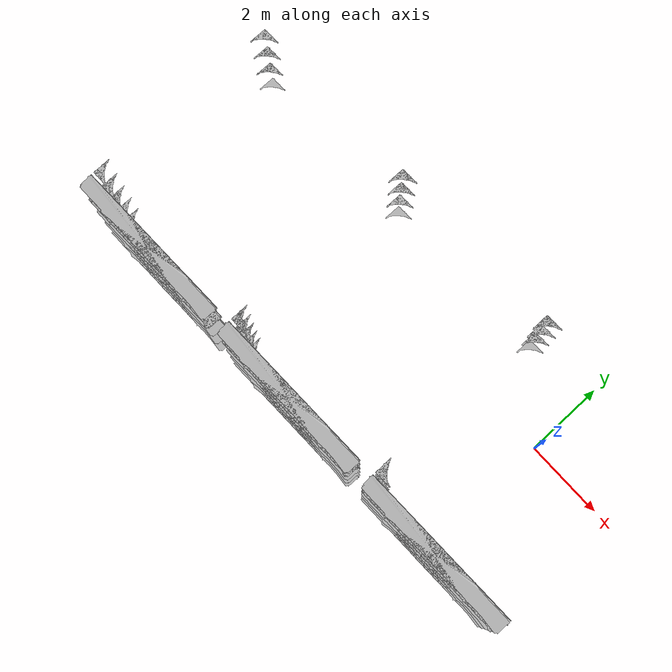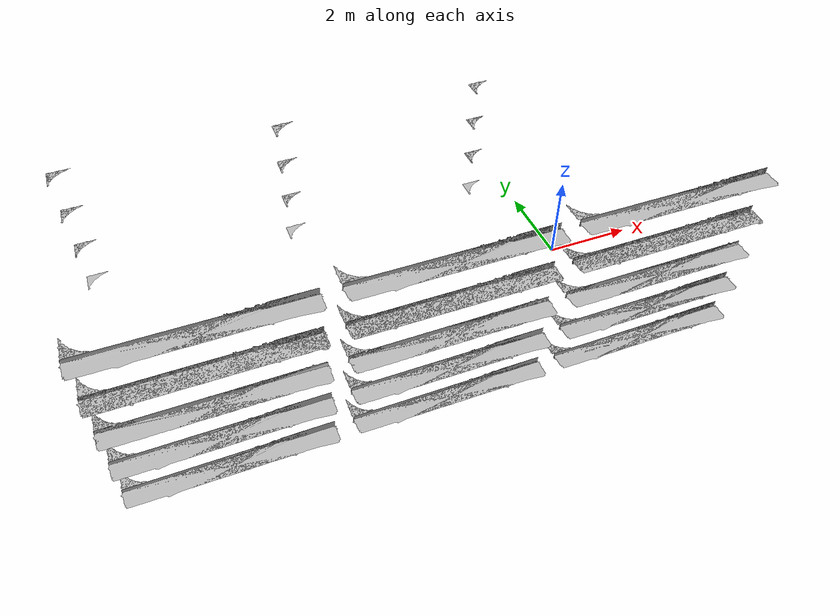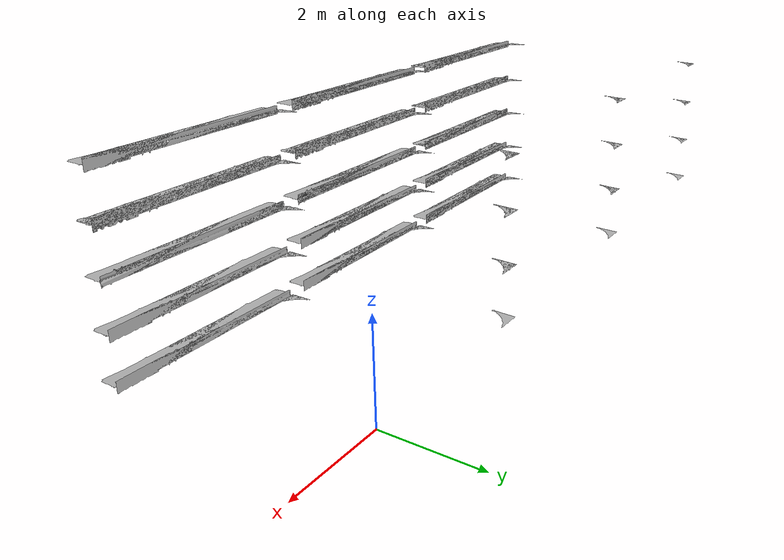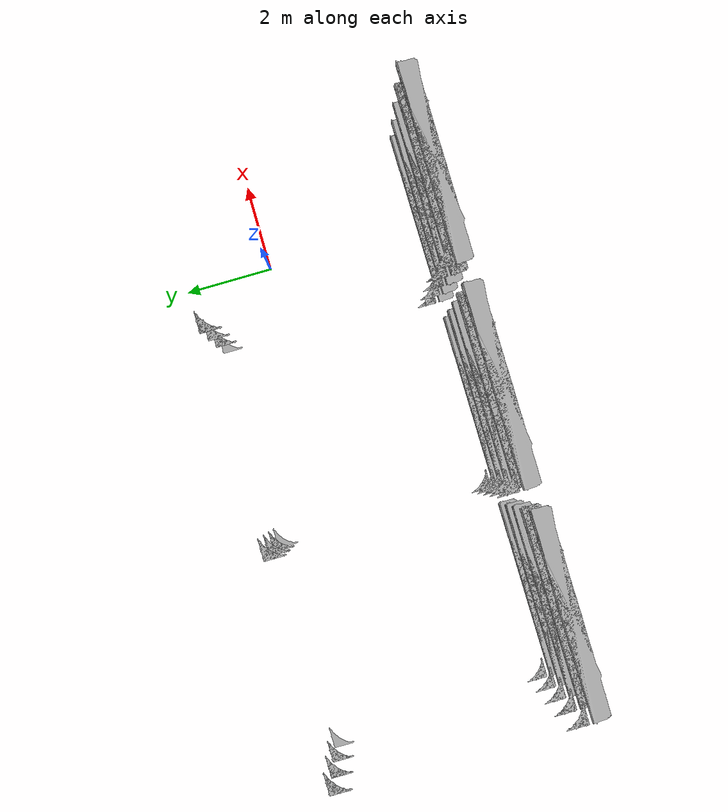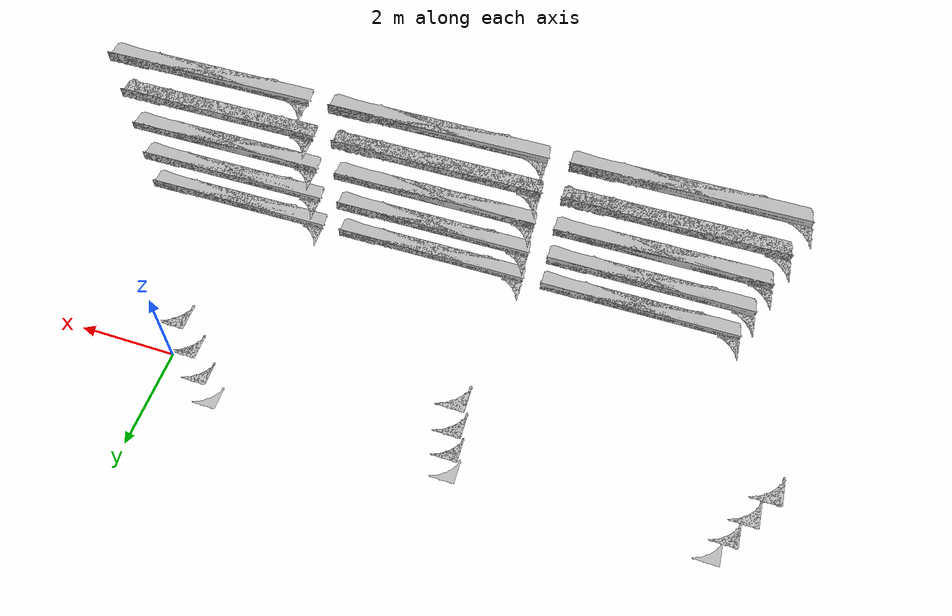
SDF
<sdf version="1.4">
 <world name="default">
  <include><uri>model://sun</uri></include>
  <plugin name="ros_interface_plugin" filename="librotors_gazebo_ros_interface_plugin.so"/>
  <spherical_coordinates>
   <surface_model>EARTH_WGS84</surface_model>
   <latitude_deg>47.3667</latitude_deg>
   <longitude_deg>8.5500</longitude_deg>
   <elevation>500.0</elevation>
   <heading_deg>0</heading_deg>
  </spherical_coordinates>
  <physics type="ode">
   <ode>
    <solver><type>quick</type><iters>1000</iters><sor>1.3</sor></solver>
    <constraints>
     <cfm>0</cfm>
     <erp>0.2</erp>
     <contact_max_correcting_vel>100</contact_max_correcting_vel>
     <contact_surface_layer>0.001</contact_surface_layer>
    </constraints>
   </ode>
   <max_step_size>0.01</max_step_size>
   <real_time_factor>1</real_time_factor>
   <real_time_update_rate>100</real_time_update_rate>
   <gravity>0 0 -9.8</gravity>
  </physics>
  <model name="sem_0">
   <pose>0.05 -0.2 0 0 0 0</pose>
   <static>true</static>
   <plugin filename="ignition-gazebo-label-system" name="ignition::gazebo::systems::Label">
    <label>3</label>
   </plugin>
   <link name="body">
    <visual name="visual">
     <geometry><mesh><uri>meshes/ballast_tank/wall1/bts/bt1.stl</uri></mesh></geometry>
    </visual>
    <visual name="visual_inv">
     <geometry><mesh><uri>meshes/ballast_tank/wall1/bts/bt1_inv.stl</uri></mesh></geometry>
    </visual>
   </link>
   <link name="body_col">
    <pose>0.05 0 0 0 0 0</pose>
    <collision name="collision"><geometry><box><size>0.05 0.05 0.05</size></box></geometry></collision>
   </link>
  </model>
  <model name="sem_1">
   <pose>0.05 -0.2 0 0 0 0</pose>
   <static>true</static>
   <plugin filename="ignition-gazebo-label-system" name="ignition::gazebo::systems::Label">
    <label>3</label>
   </plugin>
   <link name="body">
    <visual name="visual">
     <geometry><mesh><uri>meshes/ballast_tank/wall1/bts/bt2.stl</uri></mesh></geometry>
    </visual>
    <visual name="visual_inv">
     <geometry><mesh><uri>meshes/ballast_tank/wall1/bts/bt2_inv.stl</uri></mesh></geometry>
    </visual>
   </link>
   <link name="body_col">
    <pose>0.1 0 0 0 0 0</pose>
    <collision name="collision"><geometry><box><size>0.05 0.05 0.05</size></box></geometry></collision>
   </link>
  </model>
  <model name="sem_2">
   <pose>0.05 -0.2 0 0 0 0</pose>
   <static>true</static>
   <plugin filename="ignition-gazebo-label-system" name="ignition::gazebo::systems::Label">
    <label>3</label>
   </plugin>
   <link name="body">
    <visual name="visual">
     <geometry><mesh><uri>meshes/ballast_tank/wall1/bts/bt3.stl</uri></mesh></geometry>
    </visual>
    <visual name="visual_inv">
     <geometry><mesh><uri>meshes/ballast_tank/wall1/bts/bt3_inv.stl</uri></mesh></geometry>
    </visual>
   </link>
   <link name="body_col">
    <pose>0.15000000000000002 0 0 0 0 0</pose>
    <collision name="collision"><geometry><box><size>0.05 0.05 0.05</size></box></geometry></collision>
   </link>
  </model>
  <model name="sem_3">
   <pose>0.05 -0.2 0 0 0 0</pose>
   <static>true</static>
   <plugin filename="ignition-gazebo-label-system" name="ignition::gazebo::systems::Label">
    <label>3</label>
   </plugin>
   <link name="body">
    <visual name="visual">
     <geometry><mesh><uri>meshes/ballast_tank/wall1/bts/bt4.stl</uri></mesh></geometry>
    </visual>
    <visual name="visual_inv">
     <geometry><mesh><uri>meshes/ballast_tank/wall1/bts/bt4_inv.stl</uri></mesh></geometry>
    </visual>
   </link>
   <link name="body_col">
    <pose>0.2 0 0 0 0 0</pose>
    <collision name="collision"><geometry><box><size>0.05 0.05 0.05</size></box></geometry></collision>
   </link>
  </model>
  <model name="sem_4">
   <pose>0.05 -0.2 0 0 0 0</pose>
   <static>true</static>
   <plugin filename="ignition-gazebo-label-system" name="ignition::gazebo::systems::Label">
    <label>3</label>
   </plugin>
   <link name="body">
    <visual name="visual">
     <geometry><mesh><uri>meshes/ballast_tank/wall1/bts/bt5.stl</uri></mesh></geometry>
    </visual>
    <visual name="visual_inv">
     <geometry><mesh><uri>meshes/ballast_tank/wall1/bts/bt5_inv.stl</uri></mesh></geometry>
    </visual>
   </link>
   <link name="body_col">
    <pose>0.25 0 0 0 0 0</pose>
    <collision name="collision"><geometry><box><size>0.05 0.05 0.05</size></box></geometry></collision>
   </link>
  </model>
  <model name="sem_5">
   <pose>0.05 -0.2 0 0 0 0</pose>
   <static>true</static>
   <plugin filename="ignition-gazebo-label-system" name="ignition::gazebo::systems::Label">
    <label>4</label>
   </plugin>
   <link name="body">
    <visual name="visual">
     <geometry><mesh><uri>meshes/ballast_tank/wall1/longs/long1.stl</uri></mesh></geometry>
    </visual>
    <visual name="visual_inv">
     <geometry><mesh><uri>meshes/ballast_tank/wall1/longs/long1_inv.stl</uri></mesh></geometry>
    </visual>
   </link>
   <link name="body_col">
    <pose>0.30000000000000004 0 0 0 0 0</pose>
    <collision name="collision"><geometry><box><size>0.05 0.05 0.05</size></box></geometry></collision>
   </link>
  </model>
  <model name="sem_6">
   <pose>0.05 -0.2 0 0 0 0</pose>
   <static>true</static>
   <plugin filename="ignition-gazebo-label-system" name="ignition::gazebo::systems::Label">
    <label>4</label>
   </plugin>
   <link name="body">
    <visual name="visual">
     <geometry><mesh><uri>meshes/ballast_tank/wall1/longs/long2.stl</uri></mesh></geometry>
    </visual>
    <visual name="visual_inv">
     <geometry><mesh><uri>meshes/ballast_tank/wall1/longs/long2_inv.stl</uri></mesh></geometry>
    </visual>
   </link>
   <link name="body_col">
    <pose>0.35000000000000003 0 0 0 0 0</pose>
    <collision name="collision"><geometry><box><size>0.05 0.05 0.05</size></box></geometry></collision>
   </link>
  </model>
  <model name="sem_7">
   <pose>0.05 -0.2 0 0 0 0</pose>
   <static>true</static>
   <plugin filename="ignition-gazebo-label-system" name="ignition::gazebo::systems::Label">
    <label>4</label>
   </plugin>
   <link name="body">
    <visual name="visual">
     <geometry><mesh><uri>meshes/ballast_tank/wall1/longs/long3.stl</uri></mesh></geometry>
    </visual>
    <visual name="visual_inv">
     <geometry><mesh><uri>meshes/ballast_tank/wall1/longs/long3_inv.stl</uri></mesh></geometry>
    </visual>
   </link>
   <link name="body_col">
    <pose>0.4 0 0 0 0 0</pose>
    <collision name="collision"><geometry><box><size>0.05 0.05 0.05</size></box></geometry></collision>
   </link>
  </model>
  <model name="sem_8">
   <pose>0.05 -0.2 0 0 0 0</pose>
   <static>true</static>
   <plugin filename="ignition-gazebo-label-system" name="ignition::gazebo::systems::Label">
    <label>4</label>
   </plugin>
   <link name="body">
    <visual name="visual">
     <geometry><mesh><uri>meshes/ballast_tank/wall1/longs/long4.stl</uri></mesh></geometry>
    </visual>
    <visual name="visual_inv">
     <geometry><mesh><uri>meshes/ballast_tank/wall1/longs/long4_inv.stl</uri></mesh></geometry>
    </visual>
   </link>
   <link name="body_col">
    <pose>0.45 0 0 0 0 0</pose>
    <collision name="collision"><geometry><box><size>0.05 0.05 0.05</size></box></geometry></collision>
   </link>
  </model>
  <model name="sem_9">
   <pose>0.05 -0.2 0 0 0 0</pose>
   <static>true</static>
   <plugin filename="ignition-gazebo-label-system" name="ignition::gazebo::systems::Label">
    <label>4</label>
   </plugin>
   <link name="body">
    <visual name="visual">
     <geometry><mesh><uri>meshes/ballast_tank/wall1/longs/long5.stl</uri></mesh></geometry>
    </visual>
    <visual name="visual_inv">
     <geometry><mesh><uri>meshes/ballast_tank/wall1/longs/long5_inv.stl</uri></mesh></geometry>
    </visual>
   </link>
   <link name="body_col">
    <pose>0.5 0 0 0 0 0</pose>
    <collision name="collision"><geometry><box><size>0.05 0.05 0.05</size></box></geometry></collision>
   </link>
  </model>
  <model name="sem_15">
   <pose>0.05 -0.2 0 0 0 0</pose>
   <static>true</static>
   <plugin filename="ignition-gazebo-label-system" name="ignition::gazebo::systems::Label">
    <label>3</label>
   </plugin>
   <link name="body">
    <visual name="visual">
     <geometry><mesh><uri>meshes/ballast_tank/wall3/bts/bt1.stl</uri></mesh></geometry>
    </visual>
    <visual name="visual_inv">
     <geometry><mesh><uri>meshes/ballast_tank/wall3/bts/bt1_inv.stl</uri></mesh></geometry>
    </visual>
   </link>
   <link name="body_col">
    <pose>0.8 0 0 0 0 0</pose>
    <collision name="collision"><geometry><box><size>0.05 0.05 0.05</size></box></geometry></collision>
   </link>
  </model>
  <model name="sem_16">
   <pose>0.05 -0.2 0 0 0 0</pose>
   <static>true</static>
   <plugin filename="ignition-gazebo-label-system" name="ignition::gazebo::systems::Label">
    <label>3</label>
   </plugin>
   <link name="body">
    <visual name="visual">
     <geometry><mesh><uri>meshes/ballast_tank/wall3/bts/bt2.stl</uri></mesh></geometry>
    </visual>
    <visual name="visual_inv">
     <geometry><mesh><uri>meshes/ballast_tank/wall3/bts/bt2_inv.stl</uri></mesh></geometry>
    </visual>
   </link>
   <link name="body_col">
    <pose>0.8500000000000001 0 0 0 0 0</pose>
    <collision name="collision"><geometry><box><size>0.05 0.05 0.05</size></box></geometry></collision>
   </link>
  </model>
  <model name="sem_17">
   <pose>0.05 -0.2 0 0 0 0</pose>
   <static>true</static>
   <plugin filename="ignition-gazebo-label-system" name="ignition::gazebo::systems::Label">
    <label>3</label>
   </plugin>
   <link name="body">
    <visual name="visual">
     <geometry><mesh><uri>meshes/ballast_tank/wall3/bts/bt3.stl</uri></mesh></geometry>
    </visual>
    <visual name="visual_inv">
     <geometry><mesh><uri>meshes/ballast_tank/wall3/bts/bt3_inv.stl</uri></mesh></geometry>
    </visual>
   </link>
   <link name="body_col">
    <pose>0.9 0 0 0 0 0</pose>
    <collision name="collision"><geometry><box><size>0.05 0.05 0.05</size></box></geometry></collision>
   </link>
  </model>
  <model name="sem_18">
   <pose>0.05 -0.2 0 0 0 0</pose>
   <static>true</static>
   <plugin filename="ignition-gazebo-label-system" name="ignition::gazebo::systems::Label">
    <label>3</label>
   </plugin>
   <link name="body">
    <visual name="visual">
     <geometry><mesh><uri>meshes/ballast_tank/wall3/bts/bt4.stl</uri></mesh></geometry>
    </visual>
    <visual name="visual_inv">
     <geometry><mesh><uri>meshes/ballast_tank/wall3/bts/bt4_inv.stl</uri></mesh></geometry>
    </visual>
   </link>
   <link name="body_col">
    <pose>0.9500000000000001 0 0 0 0 0</pose>
    <collision name="collision"><geometry><box><size>0.05 0.05 0.05</size></box></geometry></collision>
   </link>
  </model>
  <model name="sem_19">
   <pose>0.05 -0.2 0 0 0 0</pose>
   <static>true</static>
   <plugin filename="ignition-gazebo-label-system" name="ignition::gazebo::systems::Label">
    <label>3</label>
   </plugin>
   <link name="body">
    <visual name="visual">
     <geometry><mesh><uri>meshes/ballast_tank/wall3/bts/bt5.stl</uri></mesh></geometry>
    </visual>
    <visual name="visual_inv">
     <geometry><mesh><uri>meshes/ballast_tank/wall3/bts/bt5_inv.stl</uri></mesh></geometry>
    </visual>
   </link>
   <link name="body_col">
    <pose>1.0 0 0 0 0 0</pose>
    <collision name="collision"><geometry><box><size>0.05 0.05 0.05</size></box></geometry></collision>
   </link>
  </model>
  <model name="sem_20">
   <pose>0.05 -0.2 0 0 0 0</pose>
   <static>true</static>
   <plugin filename="ignition-gazebo-label-system" name="ignition::gazebo::systems::Label">
    <label>4</label>
   </plugin>
   <link name="body">
    <visual name="visual">
     <geometry><mesh><uri>meshes/ballast_tank/wall3/longs/long1.stl</uri></mesh></geometry>
    </visual>
    <visual name="visual_inv">
     <geometry><mesh><uri>meshes/ballast_tank/wall3/longs/long1_inv.stl</uri></mesh></geometry>
    </visual>
   </link>
   <link name="body_col">
    <pose>1.05 0 0 0 0 0</pose>
    <collision name="collision"><geometry><box><size>0.05 0.05 0.05</size></box></geometry></collision>
   </link>
  </model>
  <model name="sem_21">
   <pose>0.05 -0.2 0 0 0 0</pose>
   <static>true</static>
   <plugin filename="ignition-gazebo-label-system" name="ignition::gazebo::systems::Label">
    <label>4</label>
   </plugin>
   <link name="body">
    <visual name="visual">
     <geometry><mesh><uri>meshes/ballast_tank/wall3/longs/long2.stl</uri></mesh></geometry>
    </visual>
    <visual name="visual_inv">
     <geometry><mesh><uri>meshes/ballast_tank/wall3/longs/long2_inv.stl</uri></mesh></geometry>
    </visual>
   </link>
   <link name="body_col">
    <pose>1.1 0 0 0 0 0</pose>
    <collision name="collision"><geometry><box><size>0.05 0.05 0.05</size></box></geometry></collision>
   </link>
  </model>
  <model name="sem_22">
   <pose>0.05 -0.2 0 0 0 0</pose>
   <static>true</static>
   <plugin filename="ignition-gazebo-label-system" name="ignition::gazebo::systems::Label">
    <label>4</label>
   </plugin>
   <link name="body">
    <visual name="visual">
     <geometry><mesh><uri>meshes/ballast_tank/wall3/longs/long3.stl</uri></mesh></geometry>
    </visual>
    <visual name="visual_inv">
     <geometry><mesh><uri>meshes/ballast_tank/wall3/longs/long3_inv.stl</uri></mesh></geometry>
    </visual>
   </link>
   <link name="body_col">
    <pose>1.1500000000000001 0 0 0 0 0</pose>
    <collision name="collision"><geometry><box><size>0.05 0.05 0.05</size></box></geometry></collision>
   </link>
  </model>
  <model name="sem_23">
   <pose>0.05 -0.2 0 0 0 0</pose>
   <static>true</static>
   <plugin filename="ignition-gazebo-label-system" name="ignition::gazebo::systems::Label">
    <label>4</label>
   </plugin>
   <link name="body">
    <visual name="visual">
     <geometry><mesh><uri>meshes/ballast_tank/wall3/longs/long4.stl</uri></mesh></geometry>
    </visual>
    <visual name="visual_inv">
     <geometry><mesh><uri>meshes/ballast_tank/wall3/longs/long4_inv.stl</uri></mesh></geometry>
    </visual>
   </link>
   <link name="body_col">
    <pose>1.2000000000000002 0 0 0 0 0</pose>
    <collision name="collision"><geometry><box><size>0.05 0.05 0.05</size></box></geometry></collision>
   </link>
  </model>
  <model name="sem_24">
   <pose>0.05 -0.2 0 0 0 0</pose>
   <static>true</static>
   <plugin filename="ignition-gazebo-label-system" name="ignition::gazebo::systems::Label">
    <label>4</label>
   </plugin>
   <link name="body">
    <visual name="visual">
     <geometry><mesh><uri>meshes/ballast_tank/wall3/longs/long5.stl</uri></mesh></geometry>
    </visual>
    <visual name="visual_inv">
     <geometry><mesh><uri>meshes/ballast_tank/wall3/longs/long5_inv.stl</uri></mesh></geometry>
    </visual>
   </link>
   <link name="body_col">
    <pose>1.25 0 0 0 0 0</pose>
    <collision name="collision"><geometry><box><size>0.05 0.05 0.05</size></box></geometry></collision>
   </link>
  </model>
  <model name="sem_25">
   <pose>-4.25 -0.2 0 0 0 0</pose>
   <static>true</static>
   <plugin filename="ignition-gazebo-label-system" name="ignition::gazebo::systems::Label">
    <label>3</label>
   </plugin>
   <link name="body">
    <visual name="visual">
     <geometry><mesh><uri>meshes/ballast_tank/wall1/bts/bt1.stl</uri></mesh></geometry>
    </visual>
    <visual name="visual_inv">
     <geometry><mesh><uri>meshes/ballast_tank/wall1/bts/bt1_inv.stl</uri></mesh></geometry>
    </visual>
   </link>
   <link name="body_col">
    <pose>1.3 0 0 0 0 0</pose>
    <collision name="collision"><geometry><box><size>0.05 0.05 0.05</size></box></geometry></collision>
   </link>
  </model>
  <model name="sem_26">
   <pose>-4.25 -0.2 0 0 0 0</pose>
   <static>true</static>
   <plugin filename="ignition-gazebo-label-system" name="ignition::gazebo::systems::Label">
    <label>3</label>
   </plugin>
   <link name="body">
    <visual name="visual">
     <geometry><mesh><uri>meshes/ballast_tank/wall1/bts/bt2.stl</uri></mesh></geometry>
    </visual>
    <visual name="visual_inv">
     <geometry><mesh><uri>meshes/ballast_tank/wall1/bts/bt2_inv.stl</uri></mesh></geometry>
    </visual>
   </link>
   <link name="body_col">
    <pose>1.35 0 0 0 0 0</pose>
    <collision name="collision"><geometry><box><size>0.05 0.05 0.05</size></box></geometry></collision>
   </link>
  </model>
  <model name="sem_27">
   <pose>-4.25 -0.2 0 0 0 0</pose>
   <static>true</static>
   <plugin filename="ignition-gazebo-label-system" name="ignition::gazebo::systems::Label">
    <label>3</label>
   </plugin>
   <link name="body">
    <visual name="visual">
     <geometry><mesh><uri>meshes/ballast_tank/wall1/bts/bt3.stl</uri></mesh></geometry>
    </visual>
    <visual name="visual_inv">
     <geometry><mesh><uri>meshes/ballast_tank/wall1/bts/bt3_inv.stl</uri></mesh></geometry>
    </visual>
   </link>
   <link name="body_col">
    <pose>1.4000000000000001 0 0 0 0 0</pose>
    <collision name="collision"><geometry><box><size>0.05 0.05 0.05</size></box></geometry></collision>
   </link>
  </model>
  <model name="sem_28">
   <pose>-4.25 -0.2 0 0 0 0</pose>
   <static>true</static>
   <plugin filename="ignition-gazebo-label-system" name="ignition::gazebo::systems::Label">
    <label>3</label>
   </plugin>
   <link name="body">
    <visual name="visual">
     <geometry><mesh><uri>meshes/ballast_tank/wall1/bts/bt4.stl</uri></mesh></geometry>
    </visual>
    <visual name="visual_inv">
     <geometry><mesh><uri>meshes/ballast_tank/wall1/bts/bt4_inv.stl</uri></mesh></geometry>
    </visual>
   </link>
   <link name="body_col">
    <pose>1.4500000000000002 0 0 0 0 0</pose>
    <collision name="collision"><geometry><box><size>0.05 0.05 0.05</size></box></geometry></collision>
   </link>
  </model>
  <model name="sem_29">
   <pose>-4.25 -0.2 0 0 0 0</pose>
   <static>true</static>
   <plugin filename="ignition-gazebo-label-system" name="ignition::gazebo::systems::Label">
    <label>3</label>
   </plugin>
   <link name="body">
    <visual name="visual">
     <geometry><mesh><uri>meshes/ballast_tank/wall1/bts/bt5.stl</uri></mesh></geometry>
    </visual>
    <visual name="visual_inv">
     <geometry><mesh><uri>meshes/ballast_tank/wall1/bts/bt5_inv.stl</uri></mesh></geometry>
    </visual>
   </link>
   <link name="body_col">
    <pose>1.5 0 0 0 0 0</pose>
    <collision name="collision"><geometry><box><size>0.05 0.05 0.05</size></box></geometry></collision>
   </link>
  </model>
  <model name="sem_30">
   <pose>-4.25 -0.2 0 0 0 0</pose>
   <static>true</static>
   <plugin filename="ignition-gazebo-label-system" name="ignition::gazebo::systems::Label">
    <label>4</label>
   </plugin>
   <link name="body">
    <visual name="visual">
     <geometry><mesh><uri>meshes/ballast_tank/wall1/longs/long1.stl</uri></mesh></geometry>
    </visual>
    <visual name="visual_inv">
     <geometry><mesh><uri>meshes/ballast_tank/wall1/longs/long1_inv.stl</uri></mesh></geometry>
    </visual>
   </link>
   <link name="body_col">
    <pose>1.55 0 0 0 0 0</pose>
    <collision name="collision"><geometry><box><size>0.05 0.05 0.05</size></box></geometry></collision>
   </link>
  </model>
  <model name="sem_31">
   <pose>-4.25 -0.2 0 0 0 0</pose>
   <static>true</static>
   <plugin filename="ignition-gazebo-label-system" name="ignition::gazebo::systems::Label">
    <label>4</label>
   </plugin>
   <link name="body">
    <visual name="visual">
     <geometry><mesh><uri>meshes/ballast_tank/wall1/longs/long2.stl</uri></mesh></geometry>
    </visual>
    <visual name="visual_inv">
     <geometry><mesh><uri>meshes/ballast_tank/wall1/longs/long2_inv.stl</uri></mesh></geometry>
    </visual>
   </link>
   <link name="body_col">
    <pose>1.6 0 0 0 0 0</pose>
    <collision name="collision"><geometry><box><size>0.05 0.05 0.05</size></box></geometry></collision>
   </link>
  </model>
  <model name="sem_32">
   <pose>-4.25 -0.2 0 0 0 0</pose>
   <static>true</static>
   <plugin filename="ignition-gazebo-label-system" name="ignition::gazebo::systems::Label">
    <label>4</label>
   </plugin>
   <link name="body">
    <visual name="visual">
     <geometry><mesh><uri>meshes/ballast_tank/wall1/longs/long3.stl</uri></mesh></geometry>
    </visual>
    <visual name="visual_inv">
     <geometry><mesh><uri>meshes/ballast_tank/wall1/longs/long3_inv.stl</uri></mesh></geometry>
    </visual>
   </link>
   <link name="body_col">
    <pose>1.6500000000000001 0 0 0 0 0</pose>
    <collision name="collision"><geometry><box><size>0.05 0.05 0.05</size></box></geometry></collision>
   </link>
  </model>
  <model name="sem_33">
   <pose>-4.25 -0.2 0 0 0 0</pose>
   <static>true</static>
   <plugin filename="ignition-gazebo-label-system" name="ignition::gazebo::systems::Label">
    <label>4</label>
   </plugin>
   <link name="body">
    <visual name="visual">
     <geometry><mesh><uri>meshes/ballast_tank/wall1/longs/long4.stl</uri></mesh></geometry>
    </visual>
    <visual name="visual_inv">
     <geometry><mesh><uri>meshes/ballast_tank/wall1/longs/long4_inv.stl</uri></mesh></geometry>
    </visual>
   </link>
   <link name="body_col">
    <pose>1.7000000000000002 0 0 0 0 0</pose>
    <collision name="collision"><geometry><box><size>0.05 0.05 0.05</size></box></geometry></collision>
   </link>
  </model>
  <model name="sem_34">
   <pose>-4.25 -0.2 0 0 0 0</pose>
   <static>true</static>
   <plugin filename="ignition-gazebo-label-system" name="ignition::gazebo::systems::Label">
    <label>4</label>
   </plugin>
   <link name="body">
    <visual name="visual">
     <geometry><mesh><uri>meshes/ballast_tank/wall1/longs/long5.stl</uri></mesh></geometry>
    </visual>
    <visual name="visual_inv">
     <geometry><mesh><uri>meshes/ballast_tank/wall1/longs/long5_inv.stl</uri></mesh></geometry>
    </visual>
   </link>
   <link name="body_col">
    <pose>1.75 0 0 0 0 0</pose>
    <collision name="collision"><geometry><box><size>0.05 0.05 0.05</size></box></geometry></collision>
   </link>
  </model>
  <model name="sem_40">
   <pose>-4.25 -0.2 0 0 0 0</pose>
   <static>true</static>
   <plugin filename="ignition-gazebo-label-system" name="ignition::gazebo::systems::Label">
    <label>3</label>
   </plugin>
   <link name="body">
    <visual name="visual">
     <geometry><mesh><uri>meshes/ballast_tank/wall3/bts/bt1.stl</uri></mesh></geometry>
    </visual>
    <visual name="visual_inv">
     <geometry><mesh><uri>meshes/ballast_tank/wall3/bts/bt1_inv.stl</uri></mesh></geometry>
    </visual>
   </link>
   <link name="body_col">
    <pose>2.0500000000000003 0 0 0 0 0</pose>
    <collision name="collision"><geometry><box><size>0.05 0.05 0.05</size></box></geometry></collision>
   </link>
  </model>
  <model name="sem_41">
   <pose>-4.25 -0.2 0 0 0 0</pose>
   <static>true</static>
   <plugin filename="ignition-gazebo-label-system" name="ignition::gazebo::systems::Label">
    <label>3</label>
   </plugin>
   <link name="body">
    <visual name="visual">
     <geometry><mesh><uri>meshes/ballast_tank/wall3/bts/bt2.stl</uri></mesh></geometry>
    </visual>
    <visual name="visual_inv">
     <geometry><mesh><uri>meshes/ballast_tank/wall3/bts/bt2_inv.stl</uri></mesh></geometry>
    </visual>
   </link>
   <link name="body_col">
    <pose>2.1 0 0 0 0 0</pose>
    <collision name="collision"><geometry><box><size>0.05 0.05 0.05</size></box></geometry></collision>
   </link>
  </model>
  <model name="sem_42">
   <pose>-4.25 -0.2 0 0 0 0</pose>
   <static>true</static>
   <plugin filename="ignition-gazebo-label-system" name="ignition::gazebo::systems::Label">
    <label>3</label>
   </plugin>
   <link name="body">
    <visual name="visual">
     <geometry><mesh><uri>meshes/ballast_tank/wall3/bts/bt3.stl</uri></mesh></geometry>
    </visual>
    <visual name="visual_inv">
     <geometry><mesh><uri>meshes/ballast_tank/wall3/bts/bt3_inv.stl</uri></mesh></geometry>
    </visual>
   </link>
   <link name="body_col">
    <pose>2.15 0 0 0 0 0</pose>
    <collision name="collision"><geometry><box><size>0.05 0.05 0.05</size></box></geometry></collision>
   </link>
  </model>
  <model name="sem_43">
   <pose>-4.25 -0.2 0 0 0 0</pose>
   <static>true</static>
   <plugin filename="ignition-gazebo-label-system" name="ignition::gazebo::systems::Label">
    <label>3</label>
   </plugin>
   <link name="body">
    <visual name="visual">
     <geometry><mesh><uri>meshes/ballast_tank/wall3/bts/bt4.stl</uri></mesh></geometry>
    </visual>
    <visual name="visual_inv">
     <geometry><mesh><uri>meshes/ballast_tank/wall3/bts/bt4_inv.stl</uri></mesh></geometry>
    </visual>
   </link>
   <link name="body_col">
    <pose>2.2 0 0 0 0 0</pose>
    <collision name="collision"><geometry><box><size>0.05 0.05 0.05</size></box></geometry></collision>
   </link>
  </model>
  <model name="sem_44">
   <pose>-4.25 -0.2 0 0 0 0</pose>
   <static>true</static>
   <plugin filename="ignition-gazebo-label-system" name="ignition::gazebo::systems::Label">
    <label>3</label>
   </plugin>
   <link name="body">
    <visual name="visual">
     <geometry><mesh><uri>meshes/ballast_tank/wall3/bts/bt5.stl</uri></mesh></geometry>
    </visual>
    <visual name="visual_inv">
     <geometry><mesh><uri>meshes/ballast_tank/wall3/bts/bt5_inv.stl</uri></mesh></geometry>
    </visual>
   </link>
   <link name="body_col">
    <pose>2.25 0 0 0 0 0</pose>
    <collision name="collision"><geometry><box><size>0.05 0.05 0.05</size></box></geometry></collision>
   </link>
  </model>
  <model name="sem_45">
   <pose>-4.25 -0.2 0 0 0 0</pose>
   <static>true</static>
   <plugin filename="ignition-gazebo-label-system" name="ignition::gazebo::systems::Label">
    <label>4</label>
   </plugin>
   <link name="body">
    <visual name="visual">
     <geometry><mesh><uri>meshes/ballast_tank/wall3/longs/long1.stl</uri></mesh></geometry>
    </visual>
    <visual name="visual_inv">
     <geometry><mesh><uri>meshes/ballast_tank/wall3/longs/long1_inv.stl</uri></mesh></geometry>
    </visual>
   </link>
   <link name="body_col">
    <pose>2.3000000000000003 0 0 0 0 0</pose>
    <collision name="collision"><geometry><box><size>0.05 0.05 0.05</size></box></geometry></collision>
   </link>
  </model>
  <model name="sem_46">
   <pose>-4.25 -0.2 0 0 0 0</pose>
   <static>true</static>
   <plugin filename="ignition-gazebo-label-system" name="ignition::gazebo::systems::Label">
    <label>4</label>
   </plugin>
   <link name="body">
    <visual name="visual">
     <geometry><mesh><uri>meshes/ballast_tank/wall3/longs/long2.stl</uri></mesh></geometry>
    </visual>
    <visual name="visual_inv">
     <geometry><mesh><uri>meshes/ballast_tank/wall3/longs/long2_inv.stl</uri></mesh></geometry>
    </visual>
   </link>
   <link name="body_col">
    <pose>2.35 0 0 0 0 0</pose>
    <collision name="collision"><geometry><box><size>0.05 0.05 0.05</size></box></geometry></collision>
   </link>
  </model>
  <model name="sem_47">
   <pose>-4.25 -0.2 0 0 0 0</pose>
   <static>true</static>
   <plugin filename="ignition-gazebo-label-system" name="ignition::gazebo::systems::Label">
    <label>4</label>
   </plugin>
   <link name="body">
    <visual name="visual">
     <geometry><mesh><uri>meshes/ballast_tank/wall3/longs/long3.stl</uri></mesh></geometry>
    </visual>
    <visual name="visual_inv">
     <geometry><mesh><uri>meshes/ballast_tank/wall3/longs/long3_inv.stl</uri></mesh></geometry>
    </visual>
   </link>
   <link name="body_col">
    <pose>2.4000000000000004 0 0 0 0 0</pose>
    <collision name="collision"><geometry><box><size>0.05 0.05 0.05</size></box></geometry></collision>
   </link>
  </model>
  <model name="sem_48">
   <pose>-4.25 -0.2 0 0 0 0</pose>
   <static>true</static>
   <plugin filename="ignition-gazebo-label-system" name="ignition::gazebo::systems::Label">
    <label>4</label>
   </plugin>
   <link name="body">
    <visual name="visual">
     <geometry><mesh><uri>meshes/ballast_tank/wall3/longs/long4.stl</uri></mesh></geometry>
    </visual>
    <visual name="visual_inv">
     <geometry><mesh><uri>meshes/ballast_tank/wall3/longs/long4_inv.stl</uri></mesh></geometry>
    </visual>
   </link>
   <link name="body_col">
    <pose>2.45 0 0 0 0 0</pose>
    <collision name="collision"><geometry><box><size>0.05 0.05 0.05</size></box></geometry></collision>
   </link>
  </model>
  <model name="sem_49">
   <pose>-4.25 -0.2 0 0 0 0</pose>
   <static>true</static>
   <plugin filename="ignition-gazebo-label-system" name="ignition::gazebo::systems::Label">
    <label>4</label>
   </plugin>
   <link name="body">
    <visual name="visual">
     <geometry><mesh><uri>meshes/ballast_tank/wall3/longs/long5.stl</uri></mesh></geometry>
    </visual>
    <visual name="visual_inv">
     <geometry><mesh><uri>meshes/ballast_tank/wall3/longs/long5_inv.stl</uri></mesh></geometry>
    </visual>
   </link>
   <link name="body_col">
    <pose>2.5 0 0 0 0 0</pose>
    <collision name="collision"><geometry><box><size>0.05 0.05 0.05</size></box></geometry></collision>
   </link>
  </model>
  <model name="sem_50">
   <pose>-8.549999999999999 -0.2 0 0 0 0</pose>
   <static>true</static>
   <plugin filename="ignition-gazebo-label-system" name="ignition::gazebo::systems::Label">
    <label>3</label>
   </plugin>
   <link name="body">
    <visual name="visual">
     <geometry><mesh><uri>meshes/ballast_tank/wall1/bts/bt1.stl</uri></mesh></geometry>
    </visual>
    <visual name="visual_inv">
     <geometry><mesh><uri>meshes/ballast_tank/wall1/bts/bt1_inv.stl</uri></mesh></geometry>
    </visual>
   </link>
   <link name="body_col">
    <pose>2.5500000000000003 0 0 0 0 0</pose>
    <collision name="collision"><geometry><box><size>0.05 0.05 0.05</size></box></geometry></collision>
   </link>
  </model>
  <model name="sem_51">
   <pose>-8.549999999999999 -0.2 0 0 0 0</pose>
   <static>true</static>
   <plugin filename="ignition-gazebo-label-system" name="ignition::gazebo::systems::Label">
    <label>3</label>
   </plugin>
   <link name="body">
    <visual name="visual">
     <geometry><mesh><uri>meshes/ballast_tank/wall1/bts/bt2.stl</uri></mesh></geometry>
    </visual>
    <visual name="visual_inv">
     <geometry><mesh><uri>meshes/ballast_tank/wall1/bts/bt2_inv.stl</uri></mesh></geometry>
    </visual>
   </link>
   <link name="body_col">
    <pose>2.6 0 0 0 0 0</pose>
    <collision name="collision"><geometry><box><size>0.05 0.05 0.05</size></box></geometry></collision>
   </link>
  </model>
  <model name="sem_52">
   <pose>-8.549999999999999 -0.2 0 0 0 0</pose>
   <static>true</static>
   <plugin filename="ignition-gazebo-label-system" name="ignition::gazebo::systems::Label">
    <label>3</label>
   </plugin>
   <link name="body">
    <visual name="visual">
     <geometry><mesh><uri>meshes/ballast_tank/wall1/bts/bt3.stl</uri></mesh></geometry>
    </visual>
    <visual name="visual_inv">
     <geometry><mesh><uri>meshes/ballast_tank/wall1/bts/bt3_inv.stl</uri></mesh></geometry>
    </visual>
   </link>
   <link name="body_col">
    <pose>2.6500000000000004 0 0 0 0 0</pose>
    <collision name="collision"><geometry><box><size>0.05 0.05 0.05</size></box></geometry></collision>
   </link>
  </model>
  <model name="sem_53">
   <pose>-8.549999999999999 -0.2 0 0 0 0</pose>
   <static>true</static>
   <plugin filename="ignition-gazebo-label-system" name="ignition::gazebo::systems::Label">
    <label>3</label>
   </plugin>
   <link name="body">
    <visual name="visual">
     <geometry><mesh><uri>meshes/ballast_tank/wall1/bts/bt4.stl</uri></mesh></geometry>
    </visual>
    <visual name="visual_inv">
     <geometry><mesh><uri>meshes/ballast_tank/wall1/bts/bt4_inv.stl</uri></mesh></geometry>
    </visual>
   </link>
   <link name="body_col">
    <pose>2.7 0 0 0 0 0</pose>
    <collision name="collision"><geometry><box><size>0.05 0.05 0.05</size></box></geometry></collision>
   </link>
  </model>
  <model name="sem_54">
   <pose>-8.549999999999999 -0.2 0 0 0 0</pose>
   <static>true</static>
   <plugin filename="ignition-gazebo-label-system" name="ignition::gazebo::systems::Label">
    <label>3</label>
   </plugin>
   <link name="body">
    <visual name="visual">
     <geometry><mesh><uri>meshes/ballast_tank/wall1/bts/bt5.stl</uri></mesh></geometry>
    </visual>
    <visual name="visual_inv">
     <geometry><mesh><uri>meshes/ballast_tank/wall1/bts/bt5_inv.stl</uri></mesh></geometry>
    </visual>
   </link>
   <link name="body_col">
    <pose>2.75 0 0 0 0 0</pose>
    <collision name="collision"><geometry><box><size>0.05 0.05 0.05</size></box></geometry></collision>
   </link>
  </model>
  <model name="sem_55">
   <pose>-8.549999999999999 -0.2 0 0 0 0</pose>
   <static>true</static>
   <plugin filename="ignition-gazebo-label-system" name="ignition::gazebo::systems::Label">
    <label>4</label>
   </plugin>
   <link name="body">
    <visual name="visual">
     <geometry><mesh><uri>meshes/ballast_tank/wall1/longs/long1.stl</uri></mesh></geometry>
    </visual>
    <visual name="visual_inv">
     <geometry><mesh><uri>meshes/ballast_tank/wall1/longs/long1_inv.stl</uri></mesh></geometry>
    </visual>
   </link>
   <link name="body_col">
    <pose>2.8000000000000003 0 0 0 0 0</pose>
    <collision name="collision"><geometry><box><size>0.05 0.05 0.05</size></box></geometry></collision>
   </link>
  </model>
  <model name="sem_56">
   <pose>-8.549999999999999 -0.2 0 0 0 0</pose>
   <static>true</static>
   <plugin filename="ignition-gazebo-label-system" name="ignition::gazebo::systems::Label">
    <label>4</label>
   </plugin>
   <link name="body">
    <visual name="visual">
     <geometry><mesh><uri>meshes/ballast_tank/wall1/longs/long2.stl</uri></mesh></geometry>
    </visual>
    <visual name="visual_inv">
     <geometry><mesh><uri>meshes/ballast_tank/wall1/longs/long2_inv.stl</uri></mesh></geometry>
    </visual>
   </link>
   <link name="body_col">
    <pose>2.85 0 0 0 0 0</pose>
    <collision name="collision"><geometry><box><size>0.05 0.05 0.05</size></box></geometry></collision>
   </link>
  </model>
  <model name="sem_57">
   <pose>-8.549999999999999 -0.2 0 0 0 0</pose>
   <static>true</static>
   <plugin filename="ignition-gazebo-label-system" name="ignition::gazebo::systems::Label">
    <label>4</label>
   </plugin>
   <link name="body">
    <visual name="visual">
     <geometry><mesh><uri>meshes/ballast_tank/wall1/longs/long3.stl</uri></mesh></geometry>
    </visual>
    <visual name="visual_inv">
     <geometry><mesh><uri>meshes/ballast_tank/wall1/longs/long3_inv.stl</uri></mesh></geometry>
    </visual>
   </link>
   <link name="body_col">
    <pose>2.9000000000000004 0 0 0 0 0</pose>
    <collision name="collision"><geometry><box><size>0.05 0.05 0.05</size></box></geometry></collision>
   </link>
  </model>
  <model name="sem_58">
   <pose>-8.549999999999999 -0.2 0 0 0 0</pose>
   <static>true</static>
   <plugin filename="ignition-gazebo-label-system" name="ignition::gazebo::systems::Label">
    <label>4</label>
   </plugin>
   <link name="body">
    <visual name="visual">
     <geometry><mesh><uri>meshes/ballast_tank/wall1/longs/long4.stl</uri></mesh></geometry>
    </visual>
    <visual name="visual_inv">
     <geometry><mesh><uri>meshes/ballast_tank/wall1/longs/long4_inv.stl</uri></mesh></geometry>
    </visual>
   </link>
   <link name="body_col">
    <pose>2.95 0 0 0 0 0</pose>
    <collision name="collision"><geometry><box><size>0.05 0.05 0.05</size></box></geometry></collision>
   </link>
  </model>
  <model name="sem_59">
   <pose>-8.549999999999999 -0.2 0 0 0 0</pose>
   <static>true</static>
   <plugin filename="ignition-gazebo-label-system" name="ignition::gazebo::systems::Label">
    <label>4</label>
   </plugin>
   <link name="body">
    <visual name="visual">
     <geometry><mesh><uri>meshes/ballast_tank/wall1/longs/long5.stl</uri></mesh></geometry>
    </visual>
    <visual name="visual_inv">
     <geometry><mesh><uri>meshes/ballast_tank/wall1/longs/long5_inv.stl</uri></mesh></geometry>
    </visual>
   </link>
   <link name="body_col">
    <pose>3.0 0 0 0 0 0</pose>
    <collision name="collision"><geometry><box><size>0.05 0.05 0.05</size></box></geometry></collision>
   </link>
  </model>
  <model name="sem_65">
   <pose>-8.549999999999999 -0.2 0 0 0 0</pose>
   <static>true</static>
   <plugin filename="ignition-gazebo-label-system" name="ignition::gazebo::systems::Label">
    <label>3</label>
   </plugin>
   <link name="body">
    <visual name="visual">
     <geometry><mesh><uri>meshes/ballast_tank/wall3/bts/bt1.stl</uri></mesh></geometry>
    </visual>
    <visual name="visual_inv">
     <geometry><mesh><uri>meshes/ballast_tank/wall3/bts/bt1_inv.stl</uri></mesh></geometry>
    </visual>
   </link>
   <link name="body_col">
    <pose>3.3000000000000003 0 0 0 0 0</pose>
    <collision name="collision"><geometry><box><size>0.05 0.05 0.05</size></box></geometry></collision>
   </link>
  </model>
  <model name="sem_66">
   <pose>-8.549999999999999 -0.2 0 0 0 0</pose>
   <static>true</static>
   <plugin filename="ignition-gazebo-label-system" name="ignition::gazebo::systems::Label">
    <label>3</label>
   </plugin>
   <link name="body">
    <visual name="visual">
     <geometry><mesh><uri>meshes/ballast_tank/wall3/bts/bt2.stl</uri></mesh></geometry>
    </visual>
    <visual name="visual_inv">
     <geometry><mesh><uri>meshes/ballast_tank/wall3/bts/bt2_inv.stl</uri></mesh></geometry>
    </visual>
   </link>
   <link name="body_col">
    <pose>3.35 0 0 0 0 0</pose>
    <collision name="collision"><geometry><box><size>0.05 0.05 0.05</size></box></geometry></collision>
   </link>
  </model>
  <model name="sem_67">
   <pose>-8.549999999999999 -0.2 0 0 0 0</pose>
   <static>true</static>
   <plugin filename="ignition-gazebo-label-system" name="ignition::gazebo::systems::Label">
    <label>3</label>
   </plugin>
   <link name="body">
    <visual name="visual">
     <geometry><mesh><uri>meshes/ballast_tank/wall3/bts/bt3.stl</uri></mesh></geometry>
    </visual>
    <visual name="visual_inv">
     <geometry><mesh><uri>meshes/ballast_tank/wall3/bts/bt3_inv.stl</uri></mesh></geometry>
    </visual>
   </link>
   <link name="body_col">
    <pose>3.4000000000000004 0 0 0 0 0</pose>
    <collision name="collision"><geometry><box><size>0.05 0.05 0.05</size></box></geometry></collision>
   </link>
  </model>
  <model name="sem_68">
   <pose>-8.549999999999999 -0.2 0 0 0 0</pose>
   <static>true</static>
   <plugin filename="ignition-gazebo-label-system" name="ignition::gazebo::systems::Label">
    <label>3</label>
   </plugin>
   <link name="body">
    <visual name="visual">
     <geometry><mesh><uri>meshes/ballast_tank/wall3/bts/bt4.stl</uri></mesh></geometry>
    </visual>
    <visual name="visual_inv">
     <geometry><mesh><uri>meshes/ballast_tank/wall3/bts/bt4_inv.stl</uri></mesh></geometry>
    </visual>
   </link>
   <link name="body_col">
    <pose>3.45 0 0 0 0 0</pose>
    <collision name="collision"><geometry><box><size>0.05 0.05 0.05</size></box></geometry></collision>
   </link>
  </model>
  <model name="sem_69">
   <pose>-8.549999999999999 -0.2 0 0 0 0</pose>
   <static>true</static>
   <plugin filename="ignition-gazebo-label-system" name="ignition::gazebo::systems::Label">
    <label>3</label>
   </plugin>
   <link name="body">
    <visual name="visual">
     <geometry><mesh><uri>meshes/ballast_tank/wall3/bts/bt5.stl</uri></mesh></geometry>
    </visual>
    <visual name="visual_inv">
     <geometry><mesh><uri>meshes/ballast_tank/wall3/bts/bt5_inv.stl</uri></mesh></geometry>
    </visual>
   </link>
   <link name="body_col">
    <pose>3.5 0 0 0 0 0</pose>
    <collision name="collision"><geometry><box><size>0.05 0.05 0.05</size></box></geometry></collision>
   </link>
  </model>
  <model name="sem_70">
   <pose>-8.549999999999999 -0.2 0 0 0 0</pose>
   <static>true</static>
   <plugin filename="ignition-gazebo-label-system" name="ignition::gazebo::systems::Label">
    <label>4</label>
   </plugin>
   <link name="body">
    <visual name="visual">
     <geometry><mesh><uri>meshes/ballast_tank/wall3/longs/long1.stl</uri></mesh></geometry>
    </visual>
    <visual name="visual_inv">
     <geometry><mesh><uri>meshes/ballast_tank/wall3/longs/long1_inv.stl</uri></mesh></geometry>
    </visual>
   </link>
   <link name="body_col">
    <pose>3.5500000000000003 0 0 0 0 0</pose>
    <collision name="collision"><geometry><box><size>0.05 0.05 0.05</size></box></geometry></collision>
   </link>
  </model>
  <model name="sem_71">
   <pose>-8.549999999999999 -0.2 0 0 0 0</pose>
   <static>true</static>
   <plugin filename="ignition-gazebo-label-system" name="ignition::gazebo::systems::Label">
    <label>4</label>
   </plugin>
   <link name="body">
    <visual name="visual">
     <geometry><mesh><uri>meshes/ballast_tank/wall3/longs/long2.stl</uri></mesh></geometry>
    </visual>
    <visual name="visual_inv">
     <geometry><mesh><uri>meshes/ballast_tank/wall3/longs/long2_inv.stl</uri></mesh></geometry>
    </visual>
   </link>
   <link name="body_col">
    <pose>3.6 0 0 0 0 0</pose>
    <collision name="collision"><geometry><box><size>0.05 0.05 0.05</size></box></geometry></collision>
   </link>
  </model>
  <model name="sem_72">
   <pose>-8.549999999999999 -0.2 0 0 0 0</pose>
   <static>true</static>
   <plugin filename="ignition-gazebo-label-system" name="ignition::gazebo::systems::Label">
    <label>4</label>
   </plugin>
   <link name="body">
    <visual name="visual">
     <geometry><mesh><uri>meshes/ballast_tank/wall3/longs/long3.stl</uri></mesh></geometry>
    </visual>
    <visual name="visual_inv">
     <geometry><mesh><uri>meshes/ballast_tank/wall3/longs/long3_inv.stl</uri></mesh></geometry>
    </visual>
   </link>
   <link name="body_col">
    <pose>3.6500000000000004 0 0 0 0 0</pose>
    <collision name="collision"><geometry><box><size>0.05 0.05 0.05</size></box></geometry></collision>
   </link>
  </model>
  <model name="sem_73">
   <pose>-8.549999999999999 -0.2 0 0 0 0</pose>
   <static>true</static>
   <plugin filename="ignition-gazebo-label-system" name="ignition::gazebo::systems::Label">
    <label>4</label>
   </plugin>
   <link name="body">
    <visual name="visual">
     <geometry><mesh><uri>meshes/ballast_tank/wall3/longs/long4.stl</uri></mesh></geometry>
    </visual>
    <visual name="visual_inv">
     <geometry><mesh><uri>meshes/ballast_tank/wall3/longs/long4_inv.stl</uri></mesh></geometry>
    </visual>
   </link>
   <link name="body_col">
    <pose>3.7 0 0 0 0 0</pose>
    <collision name="collision"><geometry><box><size>0.05 0.05 0.05</size></box></geometry></collision>
   </link>
  </model>
  <model name="sem_74">
   <pose>-8.549999999999999 -0.2 0 0 0 0</pose>
   <static>true</static>
   <plugin filename="ignition-gazebo-label-system" name="ignition::gazebo::systems::Label">
    <label>4</label>
   </plugin>
   <link name="body">
    <visual name="visual">
     <geometry><mesh><uri>meshes/ballast_tank/wall3/longs/long5.stl</uri></mesh></geometry>
    </visual>
    <visual name="visual_inv">
     <geometry><mesh><uri>meshes/ballast_tank/wall3/longs/long5_inv.stl</uri></mesh></geometry>
    </visual>
   </link>
   <link name="body_col">
    <pose>3.75 0 0 0 0 0</pose>
    <collision name="collision"><geometry><box><size>0.05 0.05 0.05</size></box></geometry></collision>
   </link>
  </model>
 </world>
</sdf>
